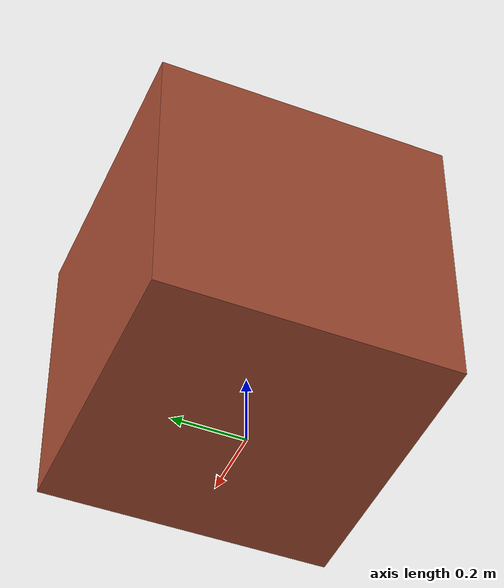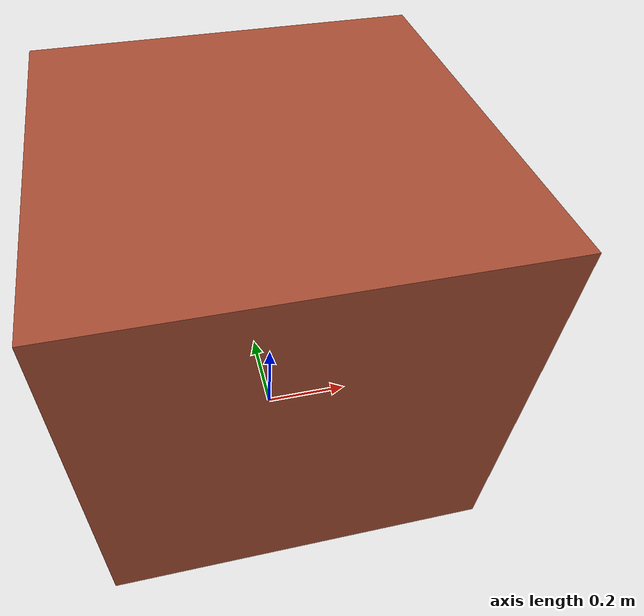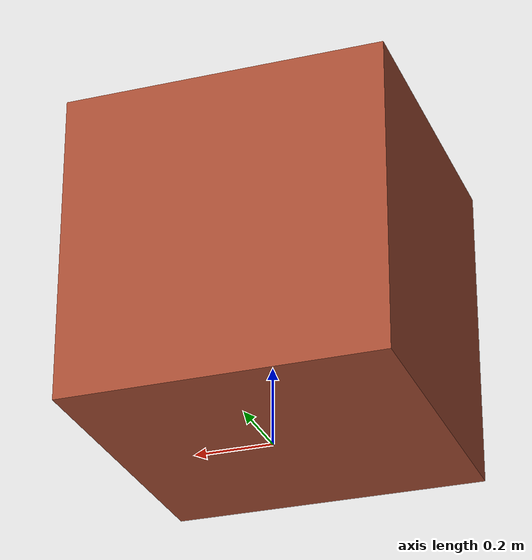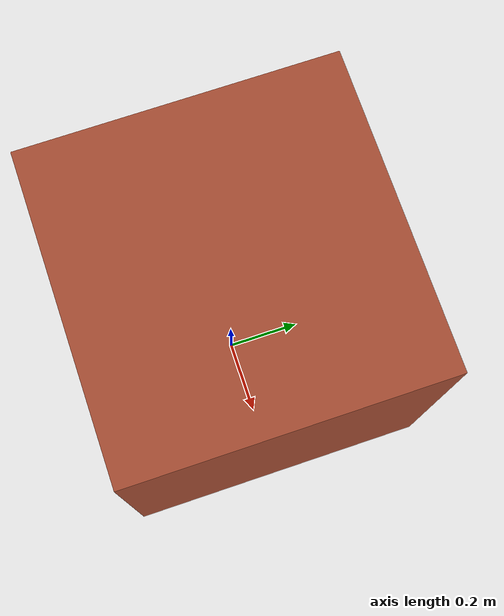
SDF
<?xml version='1.0'?>
<sdf version='1.7'>
  <model name='briks_up'>
    <pose>-0.015 0.01 0 0 -0 0</pose>
    <link name='Wall_2'>
      <collision name='Wall_2_Collision'>
        <geometry>
          <box>
            <size>0.81 0.8 0.8</size>
          </box>
        </geometry>
        <pose>0 0 0.4 0 -0 0</pose>
      </collision>
      <visual name='Wall_2_Visual'>
        <pose>0 0 0.4 0 -0 0</pose>
        <geometry>
          <box>
            <size>0.81 0.8 0.8</size>
          </box>
        </geometry>
        <material>
          <script>
            <uri>file://media/materials/scripts/gazebo.material</uri>
            <name>Gazebo/Bricks</name>
          </script>
          <ambient>1 1 1 1</ambient>
        </material>
        <meta>
          <layer>0</layer>
        </meta>
      </visual>
      <pose>-0 0 0 0 -0 0</pose>
    </link>
    <static>1</static>
  </model>
</sdf>
